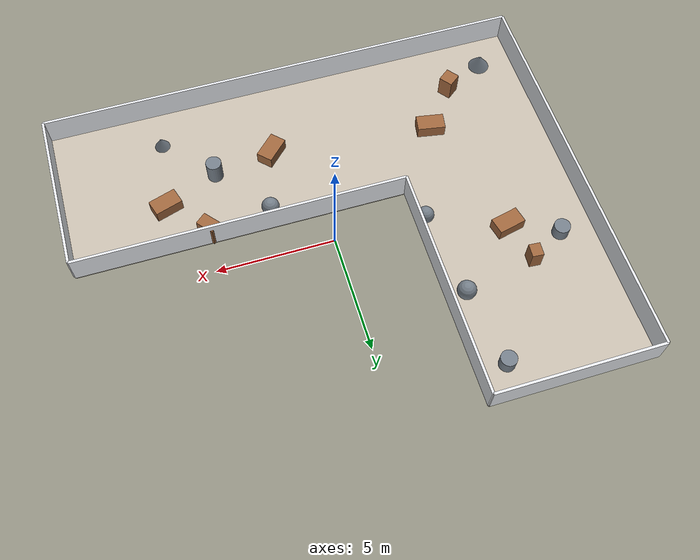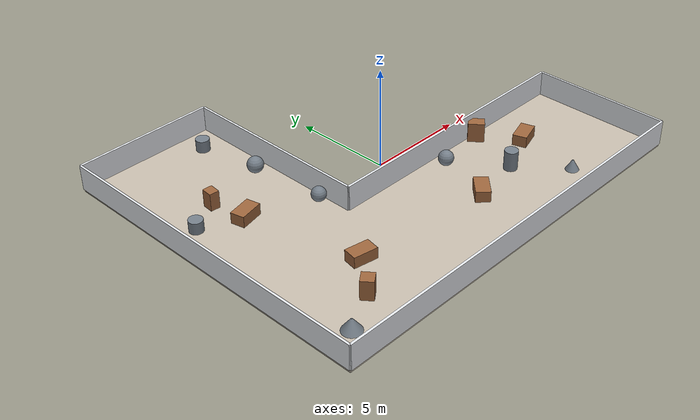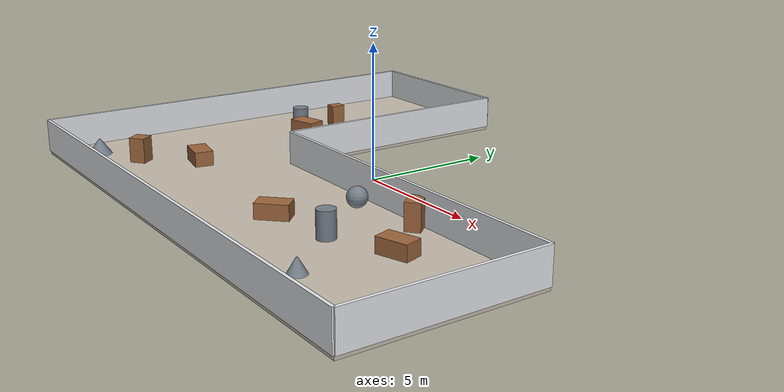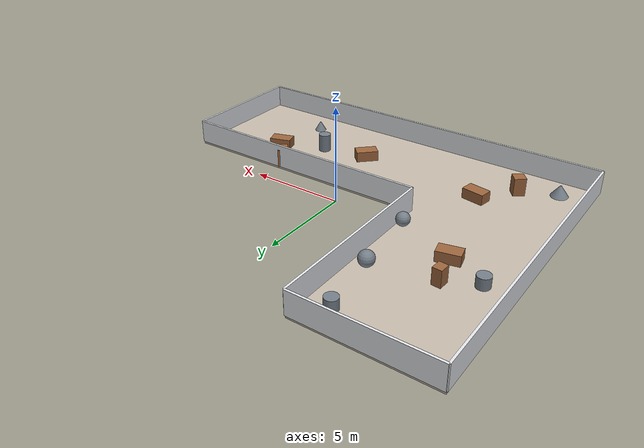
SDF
<?xml version='1.0' encoding='utf-8'?>
<sdf version="1.7">
  <world name="flat_4">
    <gravity>0 0 -9.8</gravity>
    <plugin name="gazebo_ros_state" filename="libgazebo_ros_state.so">
      <ros>
        <namespace>/gazebo</namespace>
      </ros>
    </plugin>
    <physics name="ode_physics" type="ode">
      <max_step_size>0.001</max_step_size>
      <real_time_factor>1</real_time_factor>
      <real_time_update_rate>1000</real_time_update_rate>
      <ode>
        <solver>
          <type>quick</type>
          <iters>150</iters>
          <sor>1.3</sor>
        </solver>
        <constraints>
          <cfm>0</cfm>
          <erp>0.2</erp>
          <contact_max_correcting_vel>0.2</contact_max_correcting_vel>
          <contact_surface_layer>0.001</contact_surface_layer>
        </constraints>
      </ode>
    </physics>
    <light name="sun" type="directional">
      <pose>0 0 28 0 0 0</pose>
      <diffuse>0.92 0.91 0.88 1</diffuse>
      <specular>0.18 0.18 0.16 1</specular>
      <direction>-0.35 -0.28 -0.9</direction>
      <cast_shadows>true</cast_shadows>
    </light>
    <light name="fill" type="point">
      <pose>0 0 6 0 0 0</pose>
      <diffuse>0.35 0.36 0.34 1</diffuse>
      <specular>0.02 0.02 0.02 1</specular>
      <cast_shadows>false</cast_shadows>
      <attenuation>
        <range>80</range>
        <constant>0.5</constant>
        <linear>0.02</linear>
      </attenuation>
    </light>
    <scene>
      <ambient>0.50 0.49 0.47 1</ambient>
      <background>0.80 0.82 0.86 1</background>
    </scene>
    <gui fullscreen="false">
      <camera name="user_camera">
        <pose>14.7 -15.12 17.85 0 0.65 2.2</pose>
        <view_controller>orbit</view_controller>
      </camera>
    </gui>
    <model name="flat_4_structure">
      <static>true</static>
      <link name="structure">
        <collision name="continuous_L_floor_collision">
          <pose>0 0 0 0 0 0</pose>
          <geometry>
            <mesh>
              <uri>3DModel/flat/surfaces/flat_4_continuous_L_floor.stl</uri>
            </mesh>
          </geometry>
          <max_contacts>40</max_contacts>
          <surface>
            <friction>
              <ode>
                <mu>8</mu>
                <mu2>8</mu2>
              </ode>
            </friction>
            <contact>
              <ode>
                <kp>1e7</kp>
                <kd>1000</kd>
                <max_vel>0.1</max_vel>
                <min_depth>0.001</min_depth>
              </ode>
            </contact>
          </surface>
        </collision>
        <visual name="continuous_L_floor_visual">
          <pose>0 0 0 0 0 0</pose>
          <geometry>
            <mesh>
              <uri>3DModel/flat/surfaces/flat_4_continuous_L_floor.stl</uri>
            </mesh>
          </geometry>
          <material>
            <ambient>0.78 0.74 0.68 1</ambient>
            <diffuse>0.78 0.74 0.68 1</diffuse>
          </material>
        </visual>
        <collision name="workbench_0_collision">
          <pose>-7 1.4 0.28 0 0 0.221161187</pose>
          <geometry>
            <box>
              <size>1.19 0.7 0.56</size>
            </box>
          </geometry>
          <max_contacts>40</max_contacts>
          <surface>
            <friction>
              <ode>
                <mu>2</mu>
                <mu2>2</mu2>
              </ode>
            </friction>
            <contact>
              <ode>
                <kp>1e7</kp>
                <kd>1000</kd>
                <max_vel>0.1</max_vel>
                <min_depth>0.001</min_depth>
              </ode>
            </contact>
          </surface>
        </collision>
        <visual name="workbench_0_visual">
          <pose>-7 1.4 0.28 0 0 0.221161187</pose>
          <geometry>
            <box>
              <size>1.19 0.7 0.56</size>
            </box>
          </geometry>
          <material>
            <ambient>0.62 0.40 0.24 1</ambient>
            <diffuse>0.62 0.40 0.24 1</diffuse>
          </material>
        </visual>
        <collision name="workbench_1_collision">
          <pose>-5.6 -4.2 0.28 0 0 -0.174960519</pose>
          <geometry>
            <box>
              <size>1.19 0.7 0.56</size>
            </box>
          </geometry>
          <max_contacts>40</max_contacts>
          <surface>
            <friction>
              <ode>
                <mu>2</mu>
                <mu2>2</mu2>
              </ode>
            </friction>
            <contact>
              <ode>
                <kp>1e7</kp>
                <kd>1000</kd>
                <max_vel>0.1</max_vel>
                <min_depth>0.001</min_depth>
              </ode>
            </contact>
          </surface>
        </collision>
        <visual name="workbench_1_visual">
          <pose>-5.6 -4.2 0.28 0 0 -0.174960519</pose>
          <geometry>
            <box>
              <size>1.19 0.7 0.56</size>
            </box>
          </geometry>
          <material>
            <ambient>0.62 0.40 0.24 1</ambient>
            <diffuse>0.62 0.40 0.24 1</diffuse>
          </material>
        </visual>
        <collision name="workbench_2_collision">
          <pose>1.4 -4.9 0.28 0 0 0.783832751</pose>
          <geometry>
            <box>
              <size>1.19 0.7 0.56</size>
            </box>
          </geometry>
          <max_contacts>40</max_contacts>
          <surface>
            <friction>
              <ode>
                <mu>2</mu>
                <mu2>2</mu2>
              </ode>
            </friction>
            <contact>
              <ode>
                <kp>1e7</kp>
                <kd>1000</kd>
                <max_vel>0.1</max_vel>
                <min_depth>0.001</min_depth>
              </ode>
            </contact>
          </surface>
        </collision>
        <visual name="workbench_2_visual">
          <pose>1.4 -4.9 0.28 0 0 0.783832751</pose>
          <geometry>
            <box>
              <size>1.19 0.7 0.56</size>
            </box>
          </geometry>
          <material>
            <ambient>0.62 0.40 0.24 1</ambient>
            <diffuse>0.62 0.40 0.24 1</diffuse>
          </material>
        </visual>
        <collision name="workbench_3_collision">
          <pose>6.3 -3.5 0.28 0 0 0.304188794</pose>
          <geometry>
            <box>
              <size>1.19 0.7 0.56</size>
            </box>
          </geometry>
          <max_contacts>40</max_contacts>
          <surface>
            <friction>
              <ode>
                <mu>2</mu>
                <mu2>2</mu2>
              </ode>
            </friction>
            <contact>
              <ode>
                <kp>1e7</kp>
                <kd>1000</kd>
                <max_vel>0.1</max_vel>
                <min_depth>0.001</min_depth>
              </ode>
            </contact>
          </surface>
        </collision>
        <visual name="workbench_3_visual">
          <pose>6.3 -3.5 0.28 0 0 0.304188794</pose>
          <geometry>
            <box>
              <size>1.19 0.7 0.56</size>
            </box>
          </geometry>
          <material>
            <ambient>0.62 0.40 0.24 1</ambient>
            <diffuse>0.62 0.40 0.24 1</diffuse>
          </material>
        </visual>
        <collision name="boundary_0_collision">
          <pose>0 -8.4 0.63 0 0 0</pose>
          <geometry>
            <box>
              <size>21 0.112 1.26</size>
            </box>
          </geometry>
          <max_contacts>40</max_contacts>
          <surface>
            <friction>
              <ode>
                <mu>2</mu>
                <mu2>2</mu2>
              </ode>
            </friction>
            <contact>
              <ode>
                <kp>1e7</kp>
                <kd>1000</kd>
                <max_vel>0.1</max_vel>
                <min_depth>0.001</min_depth>
              </ode>
            </contact>
          </surface>
        </collision>
        <visual name="boundary_0_visual">
          <pose>0 -8.4 0.63 0 0 0</pose>
          <geometry>
            <box>
              <size>21 0.112 1.26</size>
            </box>
          </geometry>
          <material>
            <ambient>0.90 0.91 0.93 1</ambient>
            <diffuse>0.90 0.91 0.93 1</diffuse>
          </material>
        </visual>
        <collision name="boundary_1_collision">
          <pose>10.5 -4.9 0.63 0 0 1.57079633</pose>
          <geometry>
            <box>
              <size>7 0.112 1.26</size>
            </box>
          </geometry>
          <max_contacts>40</max_contacts>
          <surface>
            <friction>
              <ode>
                <mu>2</mu>
                <mu2>2</mu2>
              </ode>
            </friction>
            <contact>
              <ode>
                <kp>1e7</kp>
                <kd>1000</kd>
                <max_vel>0.1</max_vel>
                <min_depth>0.001</min_depth>
              </ode>
            </contact>
          </surface>
        </collision>
        <visual name="boundary_1_visual">
          <pose>10.5 -4.9 0.63 0 0 1.57079633</pose>
          <geometry>
            <box>
              <size>7 0.112 1.26</size>
            </box>
          </geometry>
          <material>
            <ambient>0.90 0.91 0.93 1</ambient>
            <diffuse>0.90 0.91 0.93 1</diffuse>
          </material>
        </visual>
        <collision name="boundary_2_collision">
          <pose>3.5 -1.4 0.63 0 0 3.14159265</pose>
          <geometry>
            <box>
              <size>14 0.112 1.26</size>
            </box>
          </geometry>
          <max_contacts>40</max_contacts>
          <surface>
            <friction>
              <ode>
                <mu>2</mu>
                <mu2>2</mu2>
              </ode>
            </friction>
            <contact>
              <ode>
                <kp>1e7</kp>
                <kd>1000</kd>
                <max_vel>0.1</max_vel>
                <min_depth>0.001</min_depth>
              </ode>
            </contact>
          </surface>
        </collision>
        <visual name="boundary_2_visual">
          <pose>3.5 -1.4 0.63 0 0 3.14159265</pose>
          <geometry>
            <box>
              <size>14 0.112 1.26</size>
            </box>
          </geometry>
          <material>
            <ambient>0.90 0.91 0.93 1</ambient>
            <diffuse>0.90 0.91 0.93 1</diffuse>
          </material>
        </visual>
        <collision name="boundary_3_collision">
          <pose>-3.5 3.5 0.63 0 0 1.57079633</pose>
          <geometry>
            <box>
              <size>9.8 0.112 1.26</size>
            </box>
          </geometry>
          <max_contacts>40</max_contacts>
          <surface>
            <friction>
              <ode>
                <mu>2</mu>
                <mu2>2</mu2>
              </ode>
            </friction>
            <contact>
              <ode>
                <kp>1e7</kp>
                <kd>1000</kd>
                <max_vel>0.1</max_vel>
                <min_depth>0.001</min_depth>
              </ode>
            </contact>
          </surface>
        </collision>
        <visual name="boundary_3_visual">
          <pose>-3.5 3.5 0.63 0 0 1.57079633</pose>
          <geometry>
            <box>
              <size>9.8 0.112 1.26</size>
            </box>
          </geometry>
          <material>
            <ambient>0.90 0.91 0.93 1</ambient>
            <diffuse>0.90 0.91 0.93 1</diffuse>
          </material>
        </visual>
        <collision name="boundary_4_collision">
          <pose>-7 8.4 0.63 0 0 3.14159265</pose>
          <geometry>
            <box>
              <size>7 0.112 1.26</size>
            </box>
          </geometry>
          <max_contacts>40</max_contacts>
          <surface>
            <friction>
              <ode>
                <mu>2</mu>
                <mu2>2</mu2>
              </ode>
            </friction>
            <contact>
              <ode>
                <kp>1e7</kp>
                <kd>1000</kd>
                <max_vel>0.1</max_vel>
                <min_depth>0.001</min_depth>
              </ode>
            </contact>
          </surface>
        </collision>
        <visual name="boundary_4_visual">
          <pose>-7 8.4 0.63 0 0 3.14159265</pose>
          <geometry>
            <box>
              <size>7 0.112 1.26</size>
            </box>
          </geometry>
          <material>
            <ambient>0.90 0.91 0.93 1</ambient>
            <diffuse>0.90 0.91 0.93 1</diffuse>
          </material>
        </visual>
        <collision name="boundary_5_collision">
          <pose>-10.5 0 0.63 0 0 -1.57079633</pose>
          <geometry>
            <box>
              <size>16.8 0.112 1.26</size>
            </box>
          </geometry>
          <max_contacts>40</max_contacts>
          <surface>
            <friction>
              <ode>
                <mu>2</mu>
                <mu2>2</mu2>
              </ode>
            </friction>
            <contact>
              <ode>
                <kp>1e7</kp>
                <kd>1000</kd>
                <max_vel>0.1</max_vel>
                <min_depth>0.001</min_depth>
              </ode>
            </contact>
          </surface>
        </collision>
        <visual name="boundary_5_visual">
          <pose>-10.5 0 0.63 0 0 -1.57079633</pose>
          <geometry>
            <box>
              <size>16.8 0.112 1.26</size>
            </box>
          </geometry>
          <material>
            <ambient>0.90 0.91 0.93 1</ambient>
            <diffuse>0.90 0.91 0.93 1</diffuse>
          </material>
        </visual>
        <collision name="irregular_prop_0_collision">
          <pose>-7.07300607 -5.98888963 0.482059318 0 0 2.2279923</pose>
          <geometry>
            <box>
              <size>0.600568546 0.61555296 0.964118635</size>
            </box>
          </geometry>
          <max_contacts>40</max_contacts>
          <surface>
            <friction>
              <ode>
                <mu>2</mu>
                <mu2>2</mu2>
              </ode>
            </friction>
            <contact>
              <ode>
                <kp>1e7</kp>
                <kd>1000</kd>
                <max_vel>0.1</max_vel>
                <min_depth>0.001</min_depth>
              </ode>
            </contact>
          </surface>
        </collision>
        <visual name="irregular_prop_0_visual">
          <pose>-7.07300607 -5.98888963 0.482059318 0 0 2.2279923</pose>
          <geometry>
            <box>
              <size>0.600568546 0.61555296 0.964118635</size>
            </box>
          </geometry>
          <material>
            <ambient>0.62 0.40 0.24 1</ambient>
            <diffuse>0.62 0.40 0.24 1</diffuse>
          </material>
        </visual>
        <collision name="irregular_prop_1_collision">
          <pose>3.97905787 -4.51947017 0.490126136 0 0 0.715382473</pose>
          <geometry>
            <cylinder>
              <radius>0.33000275573522503</radius>
              <length>0.9802522718398315</length>
            </cylinder>
          </geometry>
          <max_contacts>40</max_contacts>
          <surface>
            <friction>
              <ode>
                <mu>2</mu>
                <mu2>2</mu2>
              </ode>
            </friction>
            <contact>
              <ode>
                <kp>1e7</kp>
                <kd>1000</kd>
                <max_vel>0.1</max_vel>
                <min_depth>0.001</min_depth>
              </ode>
            </contact>
          </surface>
        </collision>
        <visual name="irregular_prop_1_visual">
          <pose>3.97905787 -4.51947017 0.490126136 0 0 0.715382473</pose>
          <geometry>
            <cylinder>
              <radius>0.33000275573522503</radius>
              <length>0.9802522718398315</length>
            </cylinder>
          </geometry>
          <material>
            <ambient>0.46 0.50 0.54 1</ambient>
            <diffuse>0.46 0.50 0.54 1</diffuse>
          </material>
        </visual>
        <collision name="irregular_prop_2_collision">
          <pose>-4.29198799 3.82809525 0.39818938 0 0 2.14251895</pose>
          <geometry>
            <sphere>
              <radius>0.3981893800960108</radius>
            </sphere>
          </geometry>
          <max_contacts>40</max_contacts>
          <surface>
            <friction>
              <ode>
                <mu>2</mu>
                <mu2>2</mu2>
              </ode>
            </friction>
            <contact>
              <ode>
                <kp>1e7</kp>
                <kd>1000</kd>
                <max_vel>0.1</max_vel>
                <min_depth>0.001</min_depth>
              </ode>
            </contact>
          </surface>
        </collision>
        <visual name="irregular_prop_2_visual">
          <pose>-4.29198799 3.82809525 0.39818938 0 0 2.14251895</pose>
          <geometry>
            <sphere>
              <radius>0.3981893800960108</radius>
            </sphere>
          </geometry>
          <material>
            <ambient>0.46 0.50 0.54 1</ambient>
            <diffuse>0.46 0.50 0.54 1</diffuse>
          </material>
        </visual>
        <collision name="irregular_prop_3_collision">
          <pose>0 0 0 0 0 0</pose>
          <geometry>
            <mesh>
              <uri>3DModel/flat/surfaces/flat_4_irregular_prop_3.stl</uri>
            </mesh>
          </geometry>
          <max_contacts>40</max_contacts>
          <surface>
            <friction>
              <ode>
                <mu>8</mu>
                <mu2>8</mu2>
              </ode>
            </friction>
            <contact>
              <ode>
                <kp>1e7</kp>
                <kd>1000</kd>
                <max_vel>0.1</max_vel>
                <min_depth>0.001</min_depth>
              </ode>
            </contact>
          </surface>
        </collision>
        <visual name="irregular_prop_3_visual">
          <pose>0 0 0 0 0 0</pose>
          <geometry>
            <mesh>
              <uri>3DModel/flat/surfaces/flat_4_irregular_prop_3.stl</uri>
            </mesh>
          </geometry>
          <material>
            <ambient>0.46 0.50 0.54 1</ambient>
            <diffuse>0.46 0.50 0.54 1</diffuse>
          </material>
        </visual>
        <collision name="irregular_prop_4_collision">
          <pose>-7.43786996 3.14927777 0.440870674 0 0 -1.64495318</pose>
          <geometry>
            <box>
              <size>0.552057155 0.477424252 0.881741347</size>
            </box>
          </geometry>
          <max_contacts>40</max_contacts>
          <surface>
            <friction>
              <ode>
                <mu>2</mu>
                <mu2>2</mu2>
              </ode>
            </friction>
            <contact>
              <ode>
                <kp>1e7</kp>
                <kd>1000</kd>
                <max_vel>0.1</max_vel>
                <min_depth>0.001</min_depth>
              </ode>
            </contact>
          </surface>
        </collision>
        <visual name="irregular_prop_4_visual">
          <pose>-7.43786996 3.14927777 0.440870674 0 0 -1.64495318</pose>
          <geometry>
            <box>
              <size>0.552057155 0.477424252 0.881741347</size>
            </box>
          </geometry>
          <material>
            <ambient>0.62 0.40 0.24 1</ambient>
            <diffuse>0.62 0.40 0.24 1</diffuse>
          </material>
        </visual>
        <collision name="irregular_prop_5_collision">
          <pose>-9.00680938 2.28759282 0.290879336 0 0 -1.47617668</pose>
          <geometry>
            <cylinder>
              <radius>0.33997770552617285</radius>
              <length>0.5817586725414339</length>
            </cylinder>
          </geometry>
          <max_contacts>40</max_contacts>
          <surface>
            <friction>
              <ode>
                <mu>2</mu>
                <mu2>2</mu2>
              </ode>
            </friction>
            <contact>
              <ode>
                <kp>1e7</kp>
                <kd>1000</kd>
                <max_vel>0.1</max_vel>
                <min_depth>0.001</min_depth>
              </ode>
            </contact>
          </surface>
        </collision>
        <visual name="irregular_prop_5_visual">
          <pose>-9.00680938 2.28759282 0.290879336 0 0 -1.47617668</pose>
          <geometry>
            <cylinder>
              <radius>0.33997770552617285</radius>
              <length>0.5817586725414339</length>
            </cylinder>
          </geometry>
          <material>
            <ambient>0.46 0.50 0.54 1</ambient>
            <diffuse>0.46 0.50 0.54 1</diffuse>
          </material>
        </visual>
        <collision name="irregular_prop_6_collision">
          <pose>2.15681033 -2.15813977 0.373921071 0 0 0.607244262</pose>
          <geometry>
            <sphere>
              <radius>0.3739210713985684</radius>
            </sphere>
          </geometry>
          <max_contacts>40</max_contacts>
          <surface>
            <friction>
              <ode>
                <mu>2</mu>
                <mu2>2</mu2>
              </ode>
            </friction>
            <contact>
              <ode>
                <kp>1e7</kp>
                <kd>1000</kd>
                <max_vel>0.1</max_vel>
                <min_depth>0.001</min_depth>
              </ode>
            </contact>
          </surface>
        </collision>
        <visual name="irregular_prop_6_visual">
          <pose>2.15681033 -2.15813977 0.373921071 0 0 0.607244262</pose>
          <geometry>
            <sphere>
              <radius>0.3739210713985684</radius>
            </sphere>
          </geometry>
          <material>
            <ambient>0.46 0.50 0.54 1</ambient>
            <diffuse>0.46 0.50 0.54 1</diffuse>
          </material>
        </visual>
        <collision name="irregular_prop_7_collision">
          <pose>0 0 0 0 0 0</pose>
          <geometry>
            <mesh>
              <uri>3DModel/flat/surfaces/flat_4_irregular_prop_7.stl</uri>
            </mesh>
          </geometry>
          <max_contacts>40</max_contacts>
          <surface>
            <friction>
              <ode>
                <mu>8</mu>
                <mu2>8</mu2>
              </ode>
            </friction>
            <contact>
              <ode>
                <kp>1e7</kp>
                <kd>1000</kd>
                <max_vel>0.1</max_vel>
                <min_depth>0.001</min_depth>
              </ode>
            </contact>
          </surface>
        </collision>
        <visual name="irregular_prop_7_visual">
          <pose>0 0 0 0 0 0</pose>
          <geometry>
            <mesh>
              <uri>3DModel/flat/surfaces/flat_4_irregular_prop_7.stl</uri>
            </mesh>
          </geometry>
          <material>
            <ambient>0.46 0.50 0.54 1</ambient>
            <diffuse>0.46 0.50 0.54 1</diffuse>
          </material>
        </visual>
        <collision name="irregular_prop_8_collision">
          <pose>4.82865769 -1.75392392 0.493313248 0 0 2.27227665</pose>
          <geometry>
            <box>
              <size>0.799347335 0.549740533 0.986626496</size>
            </box>
          </geometry>
          <max_contacts>40</max_contacts>
          <surface>
            <friction>
              <ode>
                <mu>2</mu>
                <mu2>2</mu2>
              </ode>
            </friction>
            <contact>
              <ode>
                <kp>1e7</kp>
                <kd>1000</kd>
                <max_vel>0.1</max_vel>
                <min_depth>0.001</min_depth>
              </ode>
            </contact>
          </surface>
        </collision>
        <visual name="irregular_prop_8_visual">
          <pose>4.82865769 -1.75392392 0.493313248 0 0 2.27227665</pose>
          <geometry>
            <box>
              <size>0.799347335 0.549740533 0.986626496</size>
            </box>
          </geometry>
          <material>
            <ambient>0.62 0.40 0.24 1</ambient>
            <diffuse>0.62 0.40 0.24 1</diffuse>
          </material>
        </visual>
        <collision name="irregular_prop_9_collision">
          <pose>-4.75527595 7.05357715 0.301795985 0 0 1.75451566</pose>
          <geometry>
            <cylinder>
              <radius>0.33608672654396937</radius>
              <length>0.6035919696314557</length>
            </cylinder>
          </geometry>
          <max_contacts>40</max_contacts>
          <surface>
            <friction>
              <ode>
                <mu>2</mu>
                <mu2>2</mu2>
              </ode>
            </friction>
            <contact>
              <ode>
                <kp>1e7</kp>
                <kd>1000</kd>
                <max_vel>0.1</max_vel>
                <min_depth>0.001</min_depth>
              </ode>
            </contact>
          </surface>
        </collision>
        <visual name="irregular_prop_9_visual">
          <pose>-4.75527595 7.05357715 0.301795985 0 0 1.75451566</pose>
          <geometry>
            <cylinder>
              <radius>0.33608672654396937</radius>
              <length>0.6035919696314557</length>
            </cylinder>
          </geometry>
          <material>
            <ambient>0.46 0.50 0.54 1</ambient>
            <diffuse>0.46 0.50 0.54 1</diffuse>
          </material>
        </visual>
        <collision name="irregular_prop_10_collision">
          <pose>-3.88707749 0.0701770291 0.358461175 0 0 2.69845404</pose>
          <geometry>
            <sphere>
              <radius>0.3584611748487341</radius>
            </sphere>
          </geometry>
          <max_contacts>40</max_contacts>
          <surface>
            <friction>
              <ode>
                <mu>2</mu>
                <mu2>2</mu2>
              </ode>
            </friction>
            <contact>
              <ode>
                <kp>1e7</kp>
                <kd>1000</kd>
                <max_vel>0.1</max_vel>
                <min_depth>0.001</min_depth>
              </ode>
            </contact>
          </surface>
        </collision>
        <visual name="irregular_prop_10_visual">
          <pose>-3.88707749 0.0701770291 0.358461175 0 0 2.69845404</pose>
          <geometry>
            <sphere>
              <radius>0.3584611748487341</radius>
            </sphere>
          </geometry>
          <material>
            <ambient>0.46 0.50 0.54 1</ambient>
            <diffuse>0.46 0.50 0.54 1</diffuse>
          </material>
        </visual>
      </link>
    </model>
  </world>
</sdf>
